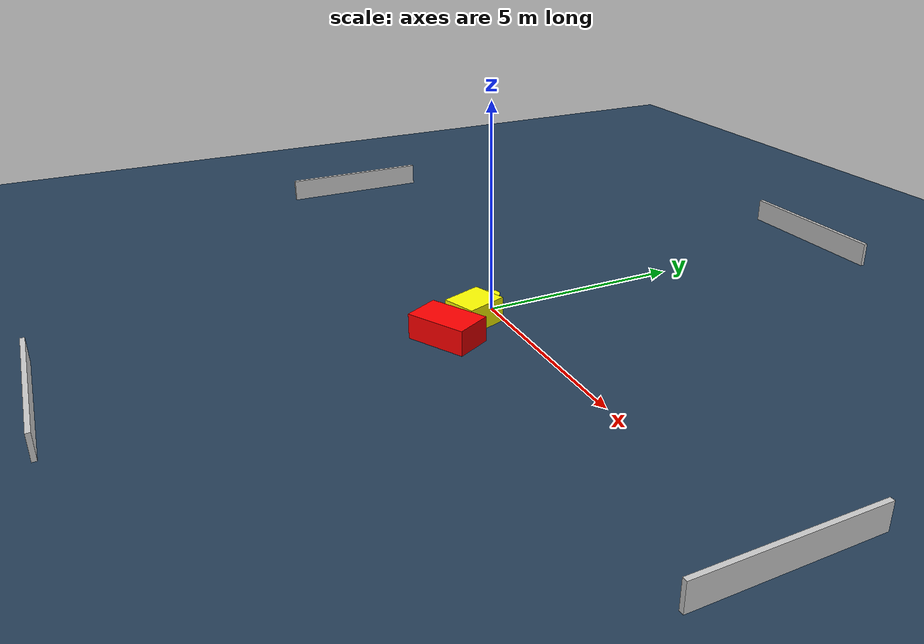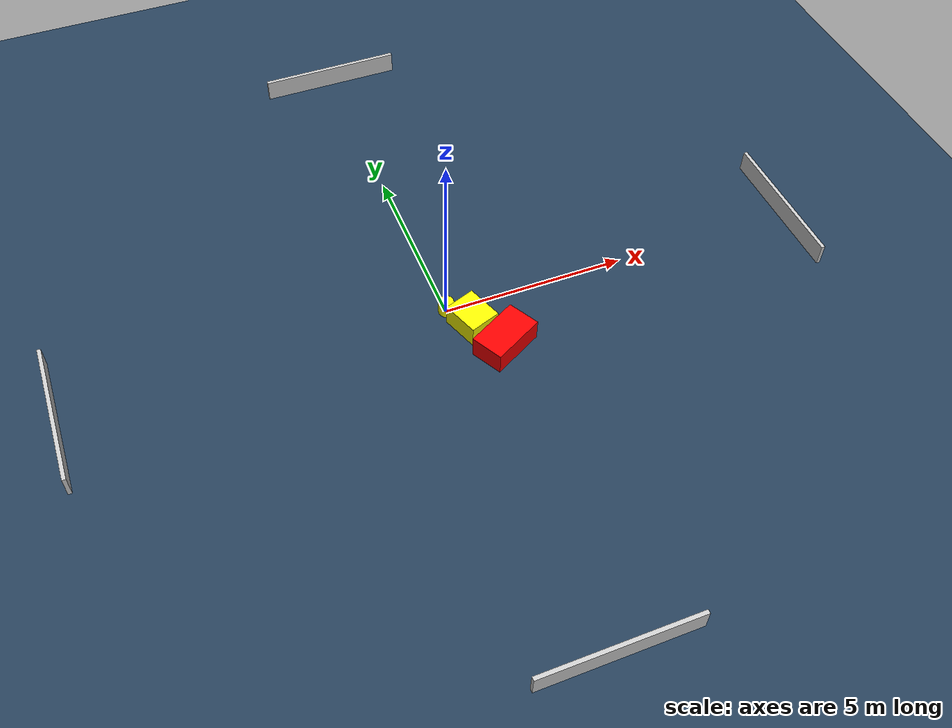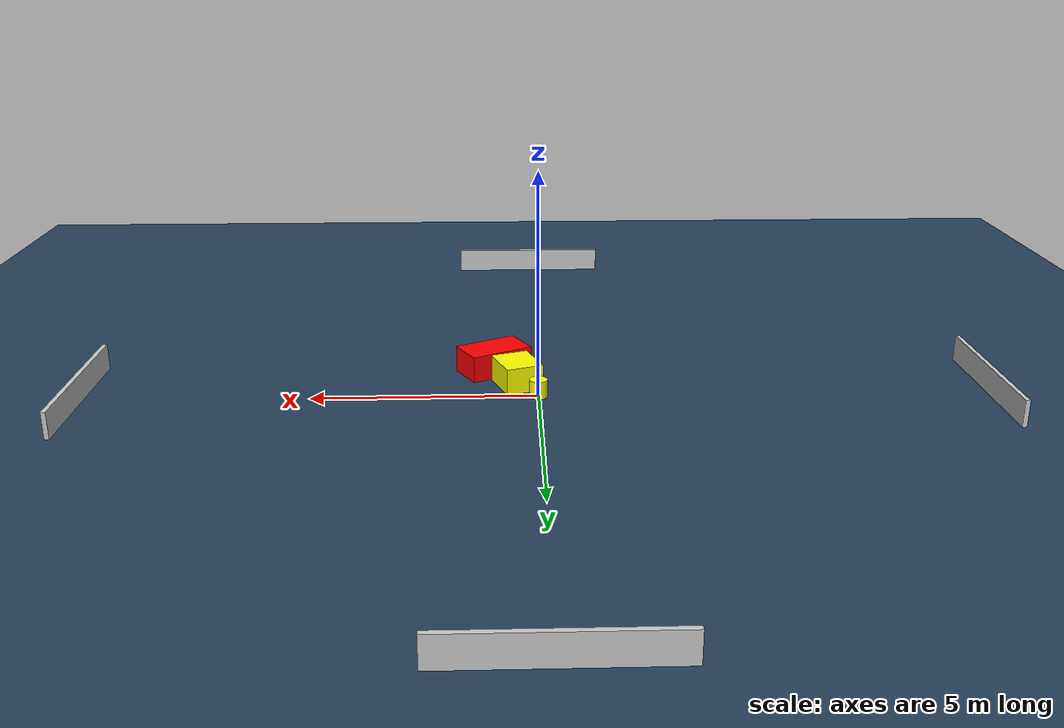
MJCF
<?xml version="1.0" ?>
<mujoco model="generated_environment">
  <option timestep="0.01" integrator="RK4" cone="elliptic"/>
  <default>
    <geom density="1"/>
  </default>
  <asset>
    <texture builtin="gradient" height="3072" name="skybox" rgb1="0.3 0.5 0.7" rgb2="0 0 0" type="skybox" width="512"/>
    <texture builtin="checker" height="300" name="groundplane" rgb1="0.2 0.3 0.4" rgb2="0.1 0.2 0.3" type="2d" width="300"/>
    <material name="groundplane" reflectance="0.2" texrepeat="5 5" texture="groundplane"/>
  </asset>
  <worldbody>
    <light dir="0 0 -1" directional="true" pos="0 0 1.5"/>
    <geom condim="3" friction="0.5 0.005 0.001" material="groundplane" name="floor" pos="0 0 0" size="0 0 0.05" type="plane"/>
    <body name="walls">
      <geom name="wall_1" condim="4" pos="-10.0 0.0 0.3" rgba="0.800000011920929 0.800000011920929 0.800000011920929 1.0" size="0.05 2.0 0.3" type="box"/>
      <geom name="wall_2" condim="4" pos="10.0 0.0 0.3" rgba="0.800000011920929 0.800000011920929 0.800000011920929 1.0" size="0.05 2.0 0.3" type="box"/>
      <geom name="wall_3" condim="4" pos="0.0 -10.0 0.3" rgba="0.800000011920929 0.800000011920929 0.800000011920929 1.0" size="2.0 0.05 0.3" type="box"/>
      <geom name="wall_4" condim="4" pos="0.0 10.0 0.3" rgba="0.800000011920929 0.800000011920929 0.800000011920929 1.0" size="2.0 0.05 0.3" type="box"/>
    </body>
    <body name="robot">
      <joint name="joint_x" type="slide" pos="0 0 0" axis="1 0 0"/>
      <joint name="joint_y" type="slide" pos="0 0 0" axis="0 1 0"/>
      <geom name="robot" type="cylinder" pos="0.0 0.0 0.2" size="0.2 0.2 0.0" mass="5.0" friction="1.0 0.005 0.0001" condim="4" rgba="1.0 1.0 0.0 1.0"/>
    </body>
    <body name="obstacle_1_movable">
      <geom name="obstacle_1_movable" condim="4" pos="0.4594775876840058 -0.67401794320354 0.3" euler="0 0 19.844740701919307" friction="0.0 0.005 0.001" rgba="1.0 1.0 0.0 1.0" size="0.42697700891775925 0.5058046721672924 0.3" type="box" mass="0.1"/>
      <joint type="free"/>
    </body>
    <body name="obstacle_2_static">
      <geom name="obstacle_2_static" condim="4" pos="0.9847009869541549 -1.5853921033145613 0.3" euler="0 0 298.2314935364452" friction="0.0 0.005 0.001" rgba="1.0 0.0 0.0 1.0" size="0.4454309106088549 0.743297386306655 0.3" type="box"/>
    </body>
  </worldbody>
  <actuator>
    <motor name="actuator_x" joint="joint_x" gear="1" ctrlrange="-1 1"/>
    <motor name="actuator_y" joint="joint_y" gear="1" ctrlrange="-1 1"/>
  </actuator>
</mujoco>
